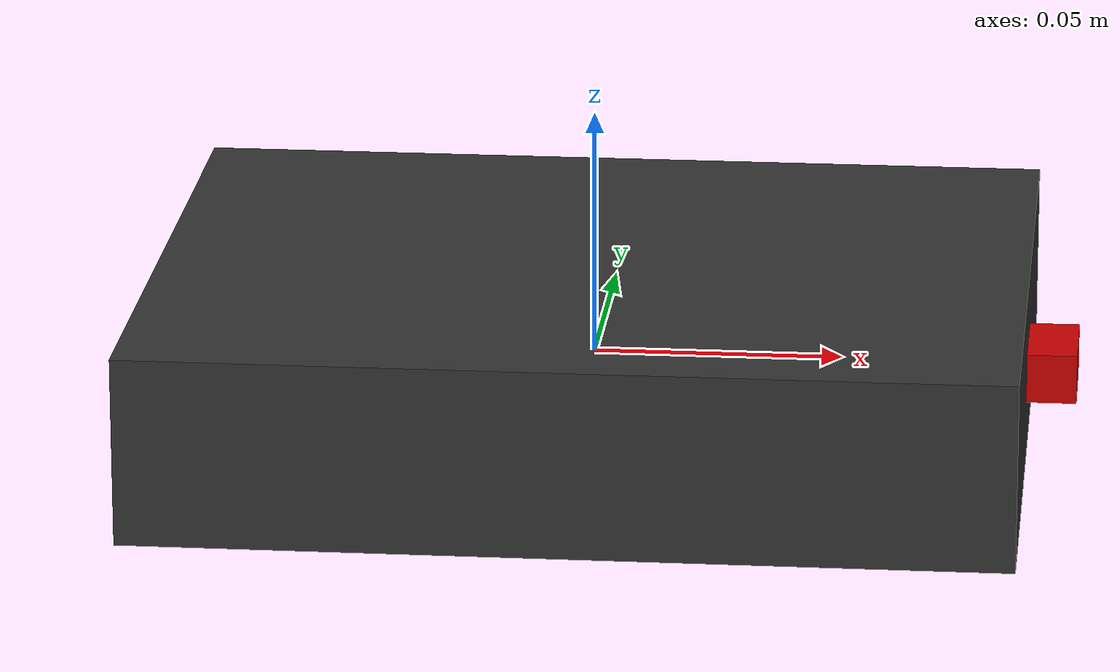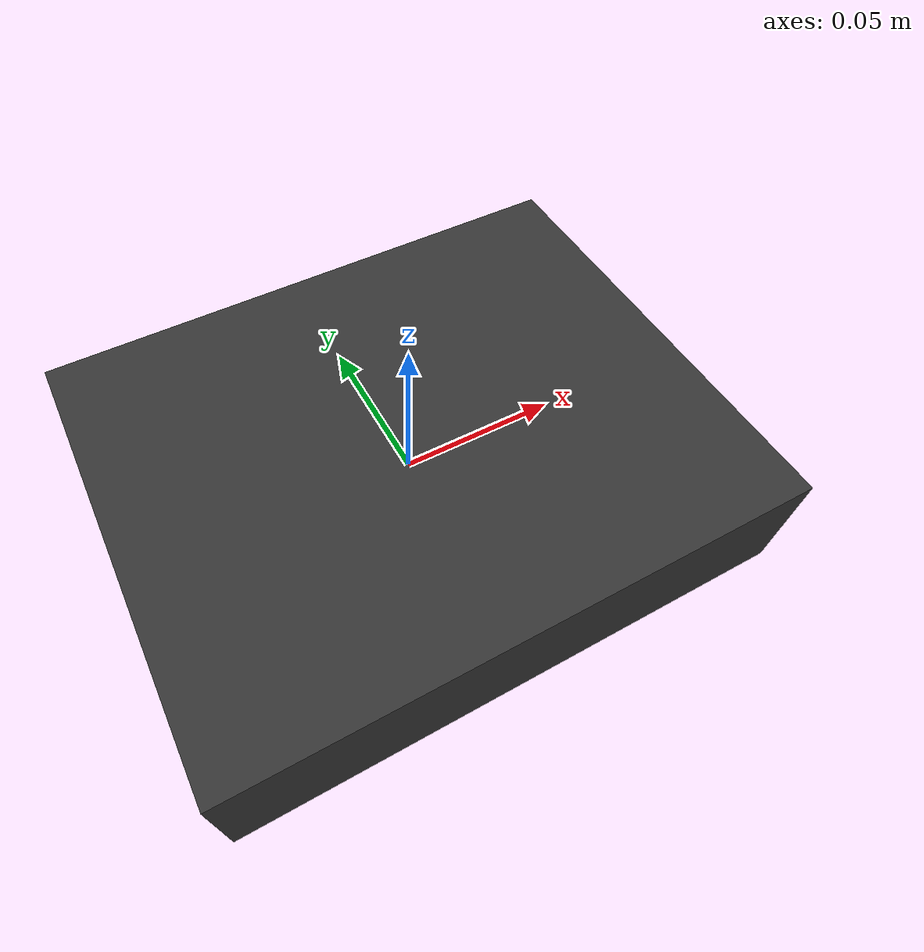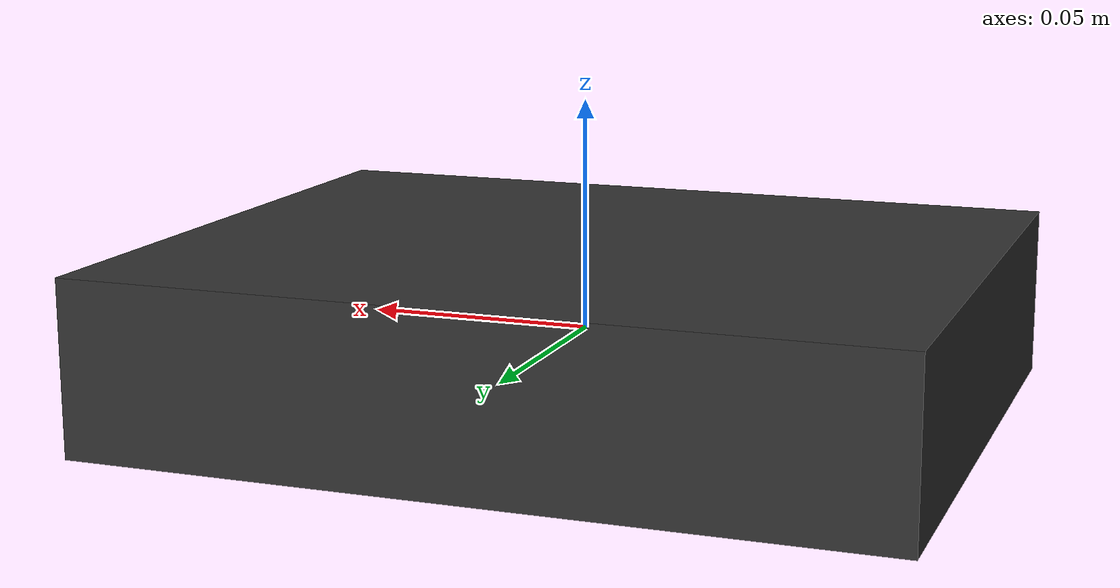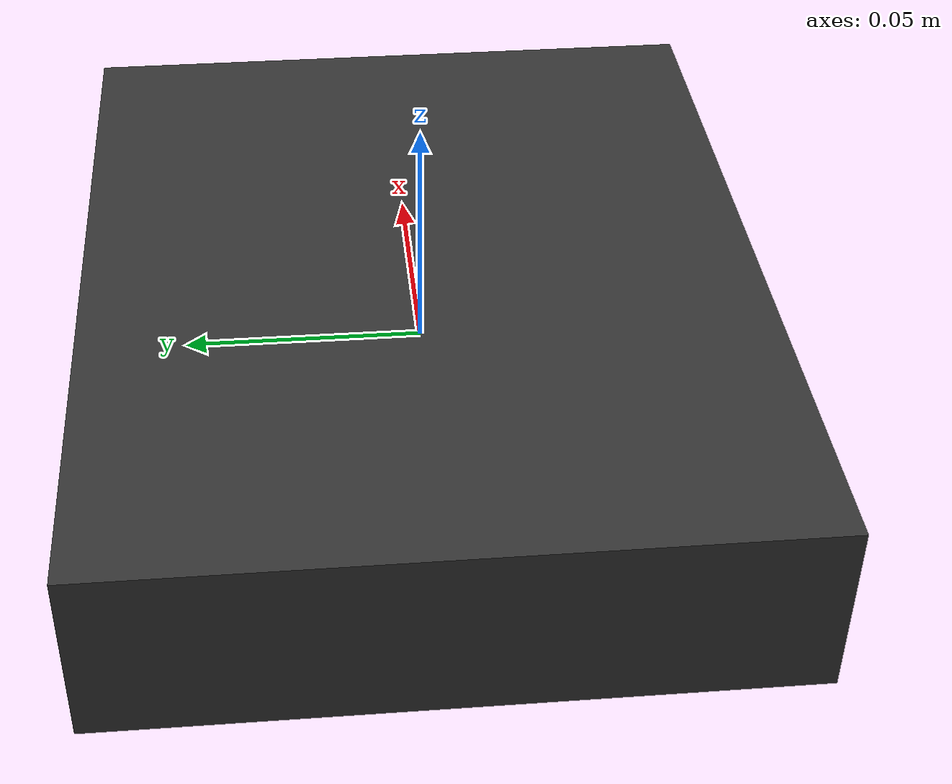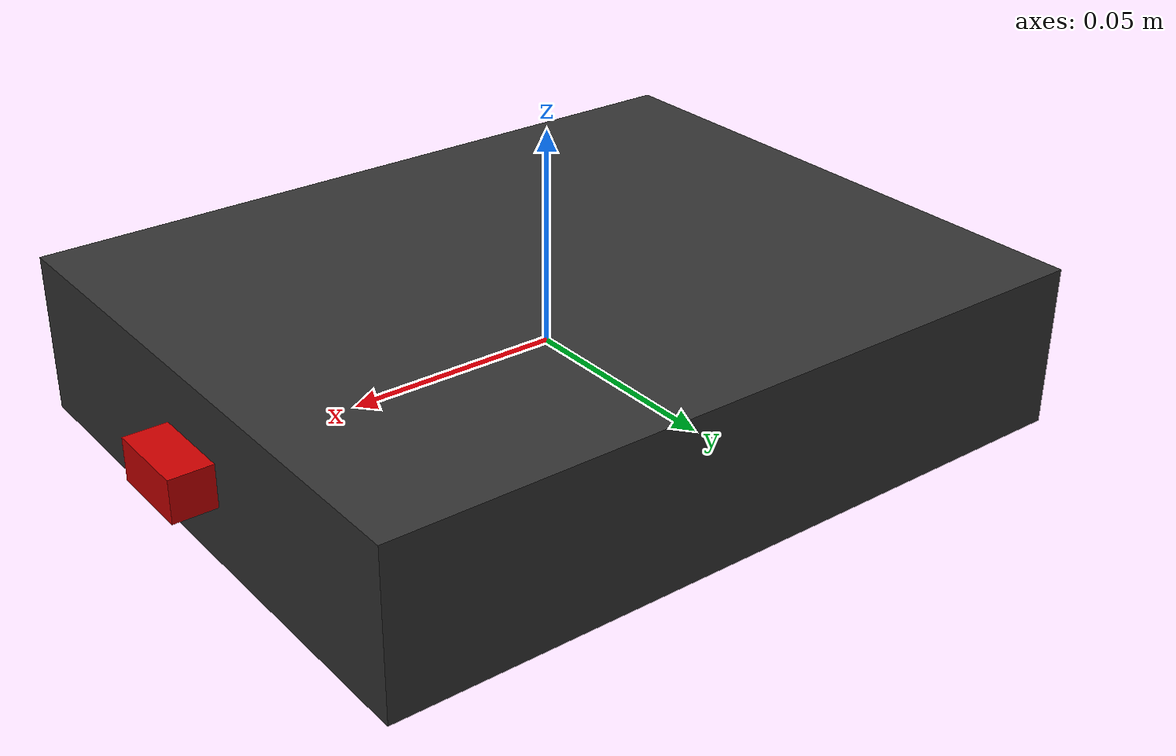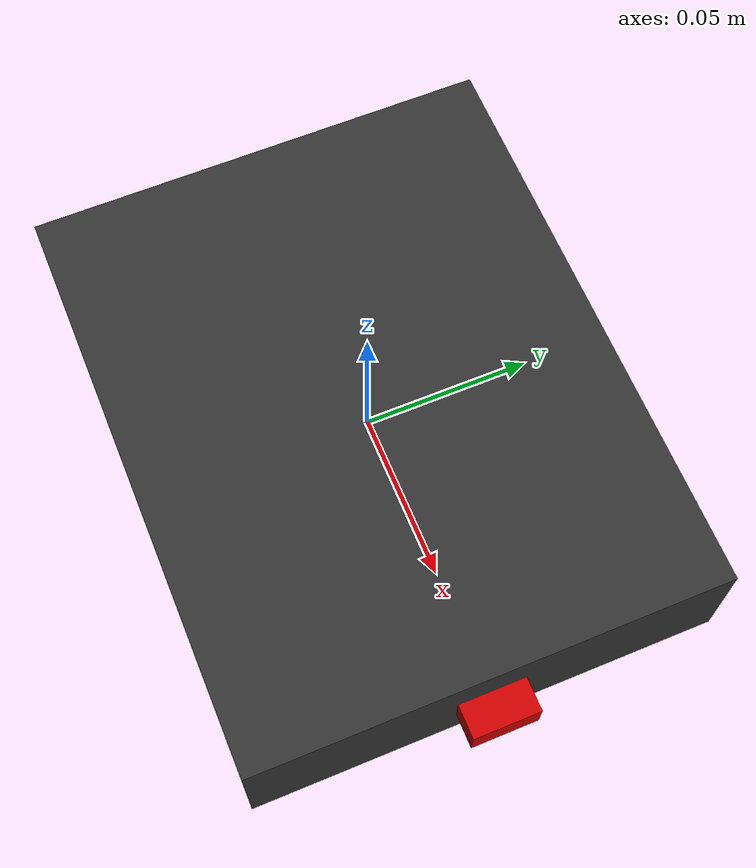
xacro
<?xml version="1.0"?>
<robot xmlns:xacro="http://www.ros.org/wiki/xacro" name="pioneer_drone">

  <xacro:include filename="pioneer_drone.gazebo" />

  <material name="dark_gray"><color rgba="0.2 0.2 0.2 1.0"/></material>
  <material name="blue"><color rgba="0.0 0.0 0.8 1.0"/></material>
  <material name="red"><color rgba="0.8 0.0 0.0 1.0"/></material>

<link name="dummy_link"></link>

  <joint name="dummy_joint" type="fixed">
    <parent link="dummy_link"/>
    <child link="base_link"/>
  </joint>

  <link name="base_link">
    <visual>
      <geometry>
        <box size="0.175 0.140 0.038"/>
      </geometry>
      <material name="dark_gray"/>
    </visual>
    <collision>
      <geometry>
        <box size="0.175 0.140 0.038"/>
      </geometry>
    </collision>
    <inertial>
      <mass value="0.12"/> <inertia ixx="0.001" ixy="0.0" ixz="0.0" iyy="0.001" iyz="0.0" izz="0.002"/>
    </inertial>
  </link>

<link name="bottom_sensor_link">
  <visual>
    <geometry>
      <box size="0.02 0.02 0.02"/> </geometry>
  </visual>
  <collision>
    <geometry>
      <box size="0.02 0.02 0.02"/>
    </geometry>
  </collision>
</link>

<joint name="bottom_sensor_joint" type="fixed">
  <parent link="base_link"/>
  <child link="bottom_sensor_link"/>
  <pose>0 0 -0.02 0 1.5708 0</pose> </joint>

  <link name="front_camera_link">
    <visual>
      <geometry>
        <box size="0.01 0.02 0.02"/>
      </geometry>
      <material name="red"/>
    </visual>
  </link>

  <joint name="front_camera_joint" type="fixed">
    <parent link="base_link"/>
    <child link="front_camera_link"/> <origin xyz="0.0875 0 0" rpy="0 1.5708 0"/>
  </joint>

</robot>
